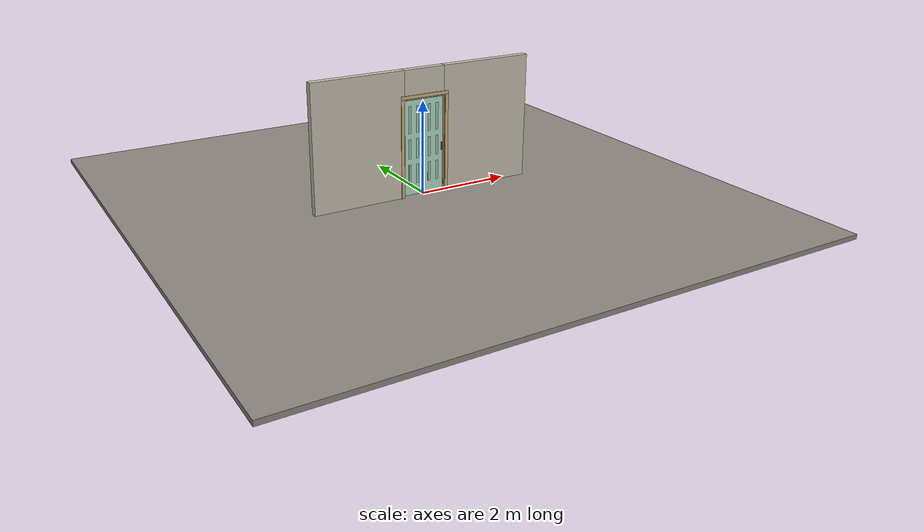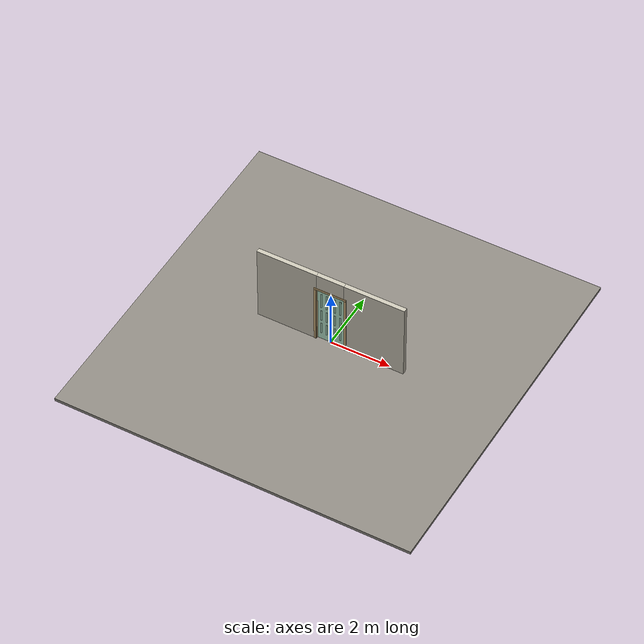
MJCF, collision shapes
<?xml version="1.0" ?>
<mujoco model="db0069_bifold_full">
  <compiler angle="radian" meshdir="../../hardware" texturedir="../../textures" autolimits="true" inertiafromgeom="false"/>
  <option timestep="0.002" integrator="implicitfast" cone="elliptic" impratio="10" noslip_iterations="3">
    <flag multiccd="enable"/>
  </option>
  <size memory="16M"/>
  <default>
    <geom condim="4" solref="0.005 1" solimp="0.95 0.99 0.001"/>
    <joint solreflimit="0.005 1" solimplimit="0.95 0.99 0.001"/>
    <tendon solreflimit="0.005 1"/>
    <equality solref="0.002 1"/>
  </default>
  <visual>
    <headlight ambient="0.4 0.4 0.4" diffuse="0.7 0.7 0.7" specular="0.2 0.2 0.2"/>
    <quality shadowsize="4096"/>
    <map znear="0.01" zfar="60"/>
  </visual>
  <asset>
    <mesh name="pull_1e5d69a91a" file="pull_1e5d69a91a.obj"/>
    <material name="mat_floor" rgba="0.55 0.53 0.5 1" specular="0.2" shininess="0.15" reflectance="0"/>
    <material name="mat_wall" rgba="0.78 0.76 0.7 1" specular="0.2" shininess="0.1" reflectance="0"/>
    <material name="mat_frame" rgba="0.82 0.7 0.5 1" specular="0.2" shininess="0.45" reflectance="0"/>
    <material name="mat_track" rgba="0.8 0.81 0.83 1" specular="0.8" shininess="0.6" reflectance="0.4"/>
    <material name="mat_hinge" rgba="0.65 0.66 0.68 1" specular="0.74" shininess="0.5" reflectance="0.36"/>
    <material name="mat_panel_0_0" rgba="0.7 0.88 0.78 1" specular="0.2" shininess="0.35" reflectance="0"/>
    <material name="mat_panel_0_0_panel" rgba="0.644 0.81 0.718 1" specular="0.2" shininess="0.35" reflectance="0"/>
    <material name="mat_panel_0_1" rgba="0.7 0.88 0.78 1" specular="0.2" shininess="0.35" reflectance="0"/>
    <material name="mat_panel_0_1_panel" rgba="0.644 0.81 0.718 1" specular="0.2" shininess="0.35" reflectance="0"/>
    <material name="mat_op_stainless" rgba="0.75 0.76 0.77 1" specular="0.8" shininess="0.65" reflectance="0.4"/>
    <texture name="skybox" type="skybox" builtin="gradient" rgb1="0.6 0.7 0.85" rgb2="0.9 0.92 0.95" width="256" height="256"/>
  </asset>
  <worldbody>
    <light name="sun" pos="1.5 -2.5 4" dir="-0.3 0.5 -0.8" directional="true" diffuse="0.8 0.8 0.8" specular="0.3 0.3 0.3" castshadow="true"/>
    <light name="fill" pos="-1.5 2.5 3" dir="0.3 -0.5 -0.7" directional="true" diffuse="0.35 0.35 0.4" castshadow="false"/>
    <camera name="robot_view" pos="0 -2.581563 1.766338" xyaxes="1 0 0 0 0.26963 0.962964" fovy="52"/>
    <camera name="far_view" pos="0 2.581563 1.766338" xyaxes="-1 0 0 0 -0.26963 0.962964" fovy="52"/>
    <camera name="iso" pos="1.961988 -2.168513 2.179388" xyaxes="0.741536 0.670913 0 -0.242917 0.268487 0.932151" fovy="46"/>
    <camera name="detail_handle" pos="0.5785 -0.8775 1.28" xyaxes="0.97561 0.219512 0 -0.070934 0.315262 0.94635" fovy="38"/>
    <geom name="floor" type="box" size="6 6 0.05" pos="0 0 -0.05" material="mat_floor" group="0" contype="1" conaffinity="1" friction="0.8 0.005 0.0001" density="2400"/>
    <geom name="wall_left" type="box" size="1.01775 0.0725 1.35" pos="-1.48225 0 1.35" material="mat_wall" group="0" contype="1" conaffinity="1" friction="0.6 0.005 0.0001" density="800"/>
    <geom name="wall_right" type="box" size="1.01775 0.0725 1.35" pos="1.48225 0 1.35" material="mat_wall" group="0" contype="1" conaffinity="1" friction="0.6 0.005 0.0001" density="800"/>
    <geom name="wall_header" type="box" size="0.4645 0.0725 0.3065" pos="0 0 2.3935" material="mat_wall" group="0" contype="1" conaffinity="1" friction="0.6 0.005 0.0001" density="800"/>
    <geom name="jamb_hinge" type="box" size="0.0095 0.0725 1.0435" pos="-0.474 0 1.0435" material="mat_frame" group="0" contype="1" conaffinity="1" friction="0.6 0.005 0.0001" density="400"/>
    <geom name="jamb_strike" type="box" size="0.0095 0.0725 1.0435" pos="0.474 0 1.0435" material="mat_frame" group="0" contype="1" conaffinity="1" friction="0.6 0.005 0.0001" density="400"/>
    <geom name="stud_strike" type="box" size="0.015 0.0725 1.0435" pos="0.4985 0 1.0435" material="mat_wall" group="0" contype="1" conaffinity="1" friction="0.6 0.005 0.0001" density="500"/>
    <geom name="jamb_head" type="box" size="0.4985 0.0725 0.0095" pos="0.015 0 2.0965" material="mat_frame" group="0" contype="1" conaffinity="1" friction="0.6 0.005 0.0001" density="400"/>
    <geom name="head_stud" type="box" size="0.4985 0.0725 0.015" pos="0.015 0 2.121" material="mat_wall" group="0" contype="1" conaffinity="1" friction="0.6 0.005 0.0001" density="500"/>
    <geom name="casing_l_n" type="box" size="0.035 0.008 1.053" pos="-0.5135 -0.0805 1.0435" material="mat_frame" group="2" contype="0" conaffinity="0" density="400"/>
    <geom name="casing_r_n" type="box" size="0.035 0.008 1.053" pos="0.5135 -0.0805 1.0435" material="mat_frame" group="2" contype="0" conaffinity="0" density="400"/>
    <geom name="casing_h_n" type="box" size="0.5485 0.008 0.035" pos="0 -0.0805 2.136" material="mat_frame" group="2" contype="0" conaffinity="0" density="400"/>
    <geom name="casing_l_p" type="box" size="0.035 0.008 1.053" pos="-0.5135 0.0805 1.0435" material="mat_frame" group="2" contype="0" conaffinity="0" density="400"/>
    <geom name="casing_r_p" type="box" size="0.035 0.008 1.053" pos="0.5135 0.0805 1.0435" material="mat_frame" group="2" contype="0" conaffinity="0" density="400"/>
    <geom name="casing_h_p" type="box" size="0.5485 0.008 0.035" pos="0 0.0805 2.136" material="mat_frame" group="2" contype="0" conaffinity="0" density="400"/>
    <geom name="fold_track" type="box" size="0.4645 0.02 0.015" pos="0 0 2.072" material="mat_track" group="1" contype="0" conaffinity="0" density="2700"/>
    <site name="approach_point" pos="0 -1.5 0" quat="1 0 0 0" size="0.05" rgba="0.2 0.9 0.2 0.5" group="4"/>
    <site name="goal_point" pos="0 1.5 0" quat="1 0 0 0" size="0.05" rgba="0.2 0.9 0.2 0.5" group="4"/>
    <site name="door_plane_center" pos="0 0 1.0435" quat="1 0 0 0" size="0.02" rgba="0.2 0.9 0.2 0.5" group="4"/>
    <body name="panel_0_0" pos="-0.4645 0 0">
      <inertial pos="0.230884 0 1.04103" mass="6.840088" quat="0.499257 0.499257 -0.500741 0.500741" diaginertia="0.114934664 2.377228542 2.490771431"/>
      <joint name="panel_0_0_hinge" type="hinge" axis="0 0 -1" pos="0.035 0 0" limited="true" range="0 1.48353" damping="0.740557" frictionloss="6.550887" armature="0.02"/>
      <geom name="panel_0_0_slab" type="box" size="0.223145 0.0175 1.016" pos="0.231855 0 1.036" material="mat_panel_0_0" group="0" contype="1" conaffinity="1" friction="0.35 0.005 0.0001" density="1"/>
      <geom name="panel_0_0_panel_0_n" type="box" size="0.024073 0.003 0.209032" pos="0.142782 -0.0205 0.472552" material="mat_panel_0_0_panel" group="1" contype="0" conaffinity="0" density="1"/>
      <geom name="panel_0_0_panel_0_p" type="box" size="0.024073 0.003 0.209032" pos="0.142782 0.0205 0.472552" material="mat_panel_0_0_panel" group="1" contype="0" conaffinity="0" density="1"/>
      <geom name="panel_0_0_panel_1_n" type="box" size="0.024073 0.003 0.209032" pos="0.320927 -0.0205 0.472552" material="mat_panel_0_0_panel" group="1" contype="0" conaffinity="0" density="1"/>
      <geom name="panel_0_0_panel_1_p" type="box" size="0.024073 0.003 0.209032" pos="0.320927 0.0205 0.472552" material="mat_panel_0_0_panel" group="1" contype="0" conaffinity="0" density="1"/>
      <geom name="panel_0_0_panel_2_n" type="box" size="0.024073 0.003 0.209032" pos="0.142782 -0.0205 1.020616" material="mat_panel_0_0_panel" group="1" contype="0" conaffinity="0" density="1"/>
      <geom name="panel_0_0_panel_2_p" type="box" size="0.024073 0.003 0.209032" pos="0.142782 0.0205 1.020616" material="mat_panel_0_0_panel" group="1" contype="0" conaffinity="0" density="1"/>
      <geom name="panel_0_0_panel_3_n" type="box" size="0.024073 0.003 0.209032" pos="0.320927 -0.0205 1.020616" material="mat_panel_0_0_panel" group="1" contype="0" conaffinity="0" density="1"/>
      <geom name="panel_0_0_panel_3_p" type="box" size="0.024073 0.003 0.209032" pos="0.320927 0.0205 1.020616" material="mat_panel_0_0_panel" group="1" contype="0" conaffinity="0" density="1"/>
      <geom name="panel_0_0_panel_4_n" type="box" size="0.024073 0.003 0.285376" pos="0.142782 -0.0205 1.645024" material="mat_panel_0_0_panel" group="1" contype="0" conaffinity="0" density="1"/>
      <geom name="panel_0_0_panel_4_p" type="box" size="0.024073 0.003 0.285376" pos="0.142782 0.0205 1.645024" material="mat_panel_0_0_panel" group="1" contype="0" conaffinity="0" density="1"/>
      <geom name="panel_0_0_panel_5_n" type="box" size="0.024073 0.003 0.285376" pos="0.320927 -0.0205 1.645024" material="mat_panel_0_0_panel" group="1" contype="0" conaffinity="0" density="1"/>
      <geom name="panel_0_0_panel_5_p" type="box" size="0.024073 0.003 0.285376" pos="0.320927 0.0205 1.645024" material="mat_panel_0_0_panel" group="1" contype="0" conaffinity="0" density="1"/>
      <geom name="panel_0_0_pivot_pin" type="cylinder" size="0.008 0.0105" pos="0.035 0 2.0525" material="mat_hinge" group="1" contype="0" conaffinity="0" density="7850"/>
      <body name="panel_0_1" pos="0.457 0 0">
        <inertial pos="0.12806 -0.008659 1.025228" mass="7.215627" quat="0.544755 0.442407 -0.55157 0.450876" diaginertia="0.264595334 1.709829492 1.972089435"/>
        <joint name="panel_0_1_hinge" type="hinge" axis="0 0 -1" pos="0 0.0175 0" limited="true" range="-3.141593 0" damping="0.2" frictionloss="0.1" armature="0.005"/>
        <geom name="panel_0_1_slab" type="box" size="0.232 0.0175 1.016" pos="0.234 0 1.036" material="mat_panel_0_1" group="0" contype="1" conaffinity="1" friction="0.35 0.005 0.0001" density="1"/>
        <geom name="panel_0_1_panel_0_n" type="box" size="0.0285 0.003 0.209032" pos="0.1405 -0.0205 0.472552" material="mat_panel_0_1_panel" group="1" contype="0" conaffinity="0" density="1"/>
        <geom name="panel_0_1_panel_0_p" type="box" size="0.0285 0.003 0.209032" pos="0.1405 0.0205 0.472552" material="mat_panel_0_1_panel" group="1" contype="0" conaffinity="0" density="1"/>
        <geom name="panel_0_1_panel_1_n" type="box" size="0.0285 0.003 0.209032" pos="0.3275 -0.0205 0.472552" material="mat_panel_0_1_panel" group="1" contype="0" conaffinity="0" density="1"/>
        <geom name="panel_0_1_panel_1_p" type="box" size="0.0285 0.003 0.209032" pos="0.3275 0.0205 0.472552" material="mat_panel_0_1_panel" group="1" contype="0" conaffinity="0" density="1"/>
        <geom name="panel_0_1_panel_2_n" type="box" size="0.0285 0.003 0.209032" pos="0.1405 -0.0205 1.020616" material="mat_panel_0_1_panel" group="1" contype="0" conaffinity="0" density="1"/>
        <geom name="panel_0_1_panel_2_p" type="box" size="0.0285 0.003 0.209032" pos="0.1405 0.0205 1.020616" material="mat_panel_0_1_panel" group="1" contype="0" conaffinity="0" density="1"/>
        <geom name="panel_0_1_panel_3_n" type="box" size="0.0285 0.003 0.209032" pos="0.3275 -0.0205 1.020616" material="mat_panel_0_1_panel" group="1" contype="0" conaffinity="0" density="1"/>
        <geom name="panel_0_1_panel_3_p" type="box" size="0.0285 0.003 0.209032" pos="0.3275 0.0205 1.020616" material="mat_panel_0_1_panel" group="1" contype="0" conaffinity="0" density="1"/>
        <geom name="panel_0_1_panel_4_n" type="box" size="0.0285 0.003 0.285376" pos="0.1405 -0.0205 1.645024" material="mat_panel_0_1_panel" group="1" contype="0" conaffinity="0" density="1"/>
        <geom name="panel_0_1_panel_4_p" type="box" size="0.0285 0.003 0.285376" pos="0.1405 0.0205 1.645024" material="mat_panel_0_1_panel" group="1" contype="0" conaffinity="0" density="1"/>
        <geom name="panel_0_1_panel_5_n" type="box" size="0.0285 0.003 0.285376" pos="0.3275 -0.0205 1.645024" material="mat_panel_0_1_panel" group="1" contype="0" conaffinity="0" density="1"/>
        <geom name="panel_0_1_panel_5_p" type="box" size="0.0285 0.003 0.285376" pos="0.3275 0.0205 1.645024" material="mat_panel_0_1_panel" group="1" contype="0" conaffinity="0" density="1"/>
        <geom name="panel_0_1_knuckle" type="cylinder" size="0.0045 1.006" pos="0 0.0175 1.036" material="mat_hinge" group="1" contype="0" conaffinity="0" density="7850"/>
        <geom name="panel_0_1_pull_n" type="mesh" mesh="pull_1e5d69a91a" pos="0.406 -0.0175 1" quat="0.707107 0.707107 0 0" material="mat_op_stainless" group="1" contype="0" conaffinity="0" density="3000"/>
        <geom name="panel_0_1_pull_col_n" type="capsule" size="0.0095 0.08" pos="0.406 -0.0775 1" material="mat_op_stainless" group="3" contype="1" conaffinity="1" rgba="0.8 0.3 0.3 0.25" friction="0.7 0.01 0.0001" density="3000"/>
        <site name="panel_0_1_pull_grip_n" pos="0.406 -0.0775 1" quat="1 0 0 0" size="0.012" rgba="0.2 0.9 0.2 0.5" group="4"/>
      </body>
    </body>
  </worldbody>
  <equality>
    <joint name="panel_0_1_couple" joint1="panel_0_1_hinge" joint2="panel_0_0_hinge" polycoef="0 -2 0 0 0" active="true"/>
  </equality>
  <sensor>
    <jointpos name="panel_0_0_hinge_pos" joint="panel_0_0_hinge"/>
    <jointvel name="panel_0_0_hinge_vel" joint="panel_0_0_hinge"/>
    <jointpos name="panel_0_1_hinge_pos" joint="panel_0_1_hinge"/>
    <jointvel name="panel_0_1_hinge_vel" joint="panel_0_1_hinge"/>
  </sensor>
</mujoco>
